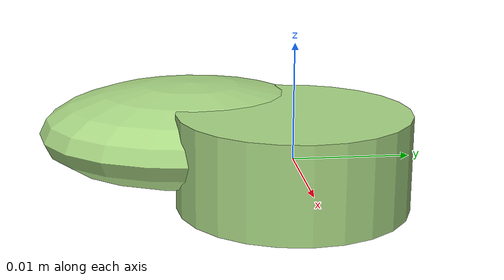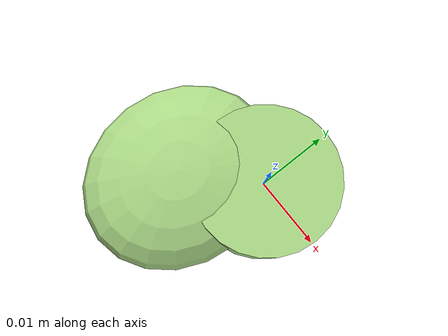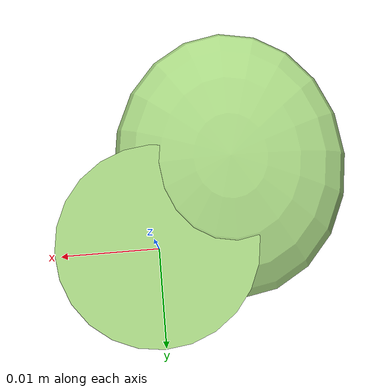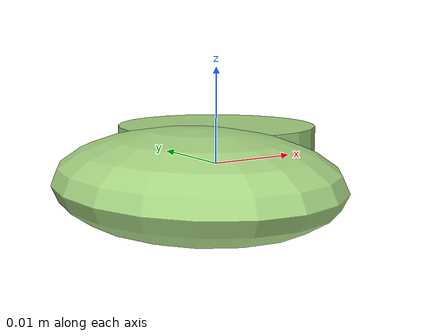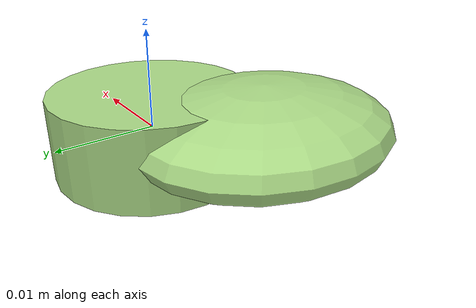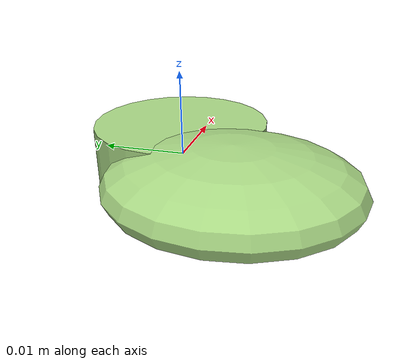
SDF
<?xml version="1.0" ?>
<!-- |    This document was autogenerated by xmacro from data/veggie_template/veggie_base.sdf.xacro  | -->
<!-- |    EDITING THIS FILE BY HAND IS NOT RECOMMENDED                                               | -->
<sdf version="1.8">
	<!-- Parameters -->
	<!-- Base -->
	<!-- Joint 0 -->
	<!-- Link 1 -->
	<!-- Joint 1 -->
	<!-- Link 2 -->
	<!-- Primitives -->
	<!-- All dimensions are half -->
	<!-- Object -->
	<model name="veggie">
		<!-- link0 -->
		<link name="link0">
			<inertial>
				<mass>0.0026090101831751722</mass>
				<inertia>
					<ixx>8.038757856027244e-08</ixx>
					<ixy>0</ixy>
					<ixz>0</ixz>
					<iyy>8.038757856027244e-08</iyy>
					<iyz>0</iyz>
					<izz>1.3106657171330807e-07</izz>
				</inertia>
			</inertial>
			<visual name="link0_visual">
				<pose>0 0 0 0 0 0</pose>
				<geometry>
					<cylinder>
						<radius>0.010023585071467342</radius>
						<length>0.008265682603238579</length>
					</cylinder>
				</geometry>
				<material>
					<ambient>0.659 0.839 0.514 1</ambient>
					<diffuse>0.659 0.839 0.514 1</diffuse>
					<specular>0 0 0 0</specular>
					<emissive>0 0 0 1</emissive>
				</material>
			</visual>
			<collision name="link0_collision">
				<pose>0 0 0 0 0 0 </pose>
				<geometry>
					<cylinder>
						<radius>0.010023585071467342</radius>
						<length>0.008265682603238579</length>
					</cylinder>
				</geometry>
			</collision>
		</link>
		<!-- link1 -->
		<joint name="joint0" type="fixed">
			<pose relative_to="link0">-0.007870140696550535 -0.0081425622099057 0.000614219599227104 0.0 0.0 0.0</pose>
			<parent>link0</parent>
			<child>link1</child>
		</joint>
		<link name="link1">
			<pose relative_to="joint0">0 0 0 0 0 0</pose>
			<inertial>
				<mass>0.0030299934852640064</mass>
				<inertia>
					<ixx>1.272482647932609e-07</ixx>
					<ixy>0</ixy>
					<ixz>0</ixz>
					<iyy>9.703198154713048e-08</iyy>
					<iyz>0</iyz>
					<izz>2.0059076278050596e-07</izz>
				</inertia>
			</inertial>
			<visual name="link1_visual">
				<pose>0 0 0 0 0 0</pose>
				<geometry>
					<ellipsoid>
						<radii>0.011856361379432821 0.013799828473871501 0.004421065543485356</radii>
					</ellipsoid>
				</geometry>
				<material>
					<ambient>0.659 0.839 0.514 1</ambient>
					<diffuse>0.659 0.839 0.514 1</diffuse>
					<specular>0 0 0 0</specular>
					<emissive>0 0 0 1</emissive>
				</material>
			</visual>
			<collision name="link1_collision">
				<pose>0 0 0 0 0 0 </pose>
				<geometry>
					<ellipsoid>
						<radii>0.011856361379432821 0.013799828473871501 0.004421065543485356</radii>
					</ellipsoid>
				</geometry>
			</collision>
		</link>
		<!-- link2 -->
	</model>
</sdf>
